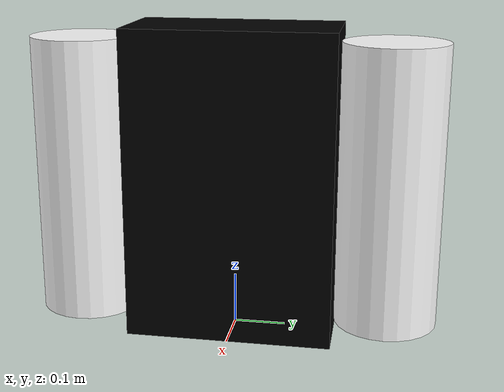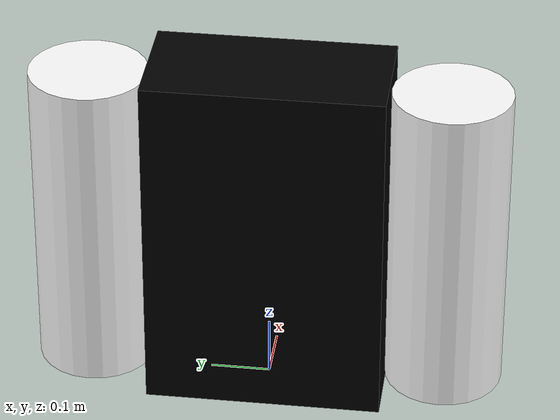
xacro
<?xml version="1.0"?>

<robot name="test-xacro" xmlns:xacro="http://ros.org/wiki/xacro">

  <xacro:property name="width" value="0.4" />
  <xacro:property name="hight" value="0.6" />
  <xacro:property name="depth" value="0.2" />
  <xacro:property name="pi" value="3.1415" />

  <material name="black">
      <color rgba="0 0 0 1"/>
    </material>

  <material name="white">
    <color rgba="1 1 1 1"/>
  </material>

  <link name="base_link">
    <visual>
      <geometry>
        <box size="${depth} ${width} ${hight}"/>
      </geometry>
      <origin xyz="0 0 ${hight/2}" rpy="0 0 0" />
      <material name="black"/>
    </visual>
  </link>

  <xacro:macro name="leg" params="prefix reflect">
    <link name="${prefix}_leg">
      <visual>
        <geometry>
          <cylinder length="${hight-0.05}" radius="${depth/2}"/>
        </geometry>
        <origin xyz="0 0 ${-hight/2+0.1}" rpy="0 0 0" />
        <material name="white"/>
      </visual>
    </link>

    <joint name="base_to_${prefix}_leg" type="continuous">
      <parent link="base_link"/>
      <child link="${prefix}_leg"/>
      <origin xyz="0 ${reflect*(width/2 + depth/2)} ${hight-0.1}" />
      <axis xyz="0 1 0" rpy="0 0 0" />
    </joint>
  </xacro:macro>

  <xacro:leg prefix="right" reflect="-1" />
  <xacro:leg prefix="left" reflect="1" />

</robot>
